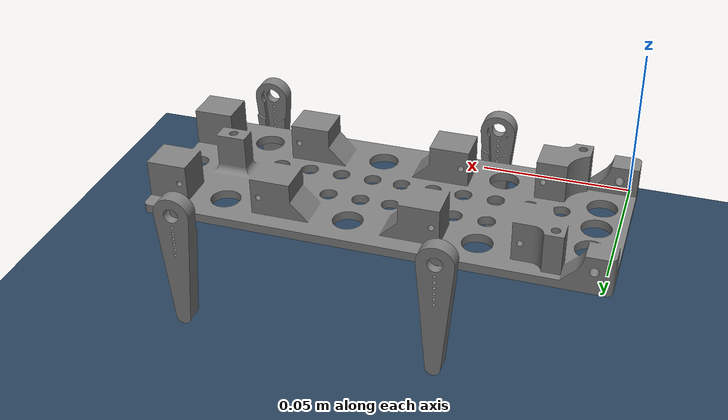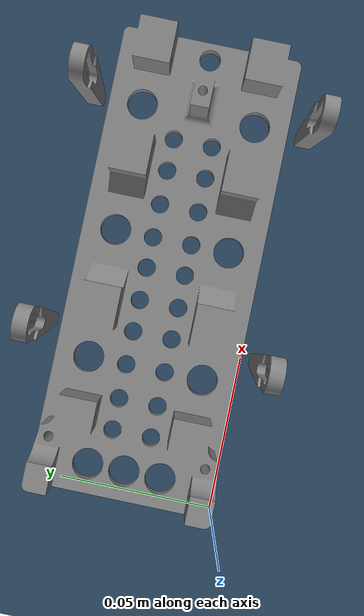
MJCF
<mujoco>

  <option timestep="0.001"/>

  <asset>
    <!-- adding scale of 1e-3 because its in mm but I want all values to be of meter -->
    <mesh name="bottom_plate" file="../stl_parts/bottom_plate.stl" scale="0.001 0.001 0.001"/>
    <mesh name="leg" file="../stl_parts/leg.stl" scale="0.001 0.001 0.001"/>
    <texture name="grid" type="2d" builtin="checker" rgb1=".1 .2 .3" rgb2=".2 .3 .4" width="100" height="100"/>
    <material name="grid" texture="grid" texrepeat="2 2" texuniform="true"
    reflectance=".2"/>
  </asset>

  <default>
    <default class="sg90_servo_joint">
      <!-- angle values are in degrees -->
      <joint damping="0.07" frictionloss="0.01" armature="0.002" range="-90 90"/>
    </default>
  </default>

  <worldbody>
    <light pos="0 0 1" mode="trackcom"/>
    <geom name="ground" type="plane" pos="0 0 -.05" size="1.0 1.0 .1" material="grid" solimp=".99 .99 .01" solref=".001 1"/>
    <body>
      <freejoint/>
      <geom type="mesh" name="bottom_plate" pos="0 0 0" mesh="bottom_plate"/>
      <body>
        <geom type="mesh" name="leg1" pos="0.0477 -0.007 0.01" axisangle="0 0 1 0" mesh="leg"/>
        <joint type="hinge" class="sg90_servo_joint" name="leg_joint1" pos="0.0477 -0.007 0.01" axis="0 1 0"/>
      </body>
      <body>
        <geom type="mesh" name="leg2" pos="0.1327 -0.007 0.01" axisangle="0 0 1 0" mesh="leg"/>
        <joint type="hinge" class="sg90_servo_joint" name="leg_joint2" pos="0.1327 -0.007 0.01" axis="0 1 0"/>
      </body>
      <body>
        <geom type="mesh" name="leg3" pos="0.0477 0.067 0.01" axisangle="0 0 1 180" mesh="leg"/>
        <joint type="hinge" class="sg90_servo_joint" name="leg_joint3" pos="0.0477 0.067 0.01" axis="0 1 0"/>
      </body>
      <body>
        <geom type="mesh" name="leg4" pos="0.1327 0.067 0.01" axisangle="0 0 1 180" mesh="leg"/>
        <joint type="hinge" class="sg90_servo_joint" name="leg_joint4" pos="0.1327 0.067 0.01" axis="0 1 0"/>
      </body>
    </body>
  </worldbody>

  <actuator>
    <!-- angle values are in radians -->
    <position name="servo1" joint="leg_joint1" kp="5.0" ctrlrange="-1.5708 1.5708" forcerange="-0.25 0.25"/>
    <position name="servo2" joint="leg_joint2" kp="5.0" ctrlrange="-1.5708 1.5708" forcerange="-0.25 0.25"/>
    <position name="servo3" joint="leg_joint3" kp="5.0" ctrlrange="-1.5708 1.5708" forcerange="-0.25 0.25"/>
    <position name="servo4" joint="leg_joint4" kp="5.0" ctrlrange="-1.5708 1.5708" forcerange="-0.25 0.25"/>
  </actuator>
</mujoco>
